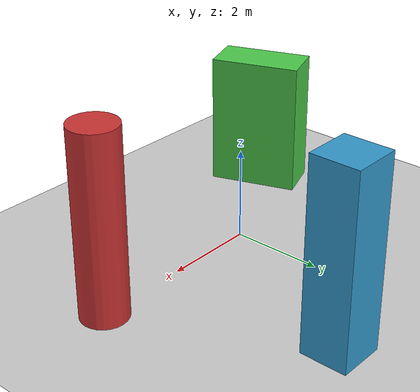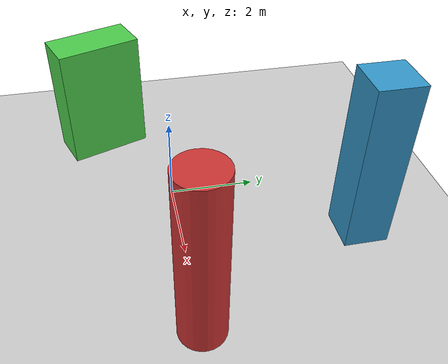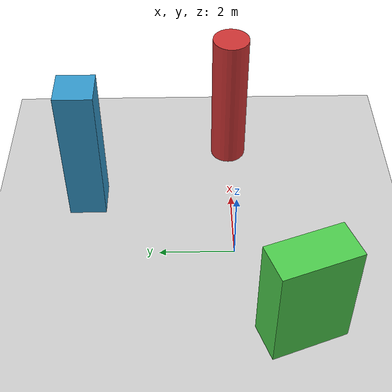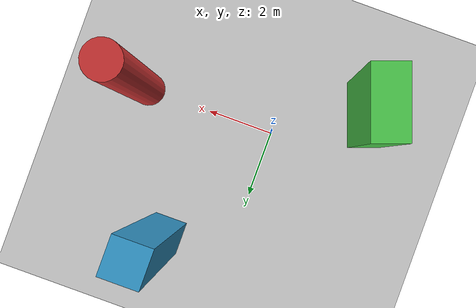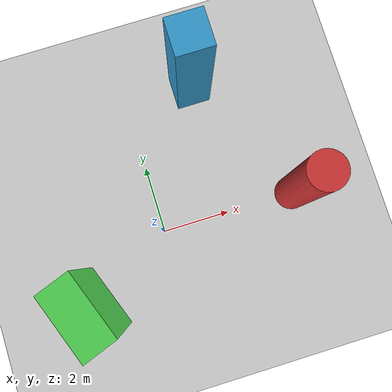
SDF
<?xml version="1.0"?>
<sdf version="1.6">
  <!-- Qualification-only geometry for real Mid360 variation during Hector motion. -->
  <world name="default">
    <include><uri>model://ground_plane</uri></include>
    <include><uri>model://sun</uri></include>

    <model name="front_observation_cylinder">
      <static>true</static>
      <pose>4.0 0.0 2.0 0 0 0</pose>
      <link name="link">
        <collision name="collision">
          <geometry><cylinder><radius>0.50</radius><length>4.0</length></cylinder></geometry>
        </collision>
        <visual name="visual">
          <geometry><cylinder><radius>0.50</radius><length>4.0</length></cylinder></geometry>
          <material><ambient>0.8 0.2 0.2 1</ambient><diffuse>0.8 0.2 0.2 1</diffuse></material>
        </visual>
      </link>
    </model>

    <model name="turn_observation_box">
      <static>true</static>
      <pose>2.0 4.0 2.0 0 0 0</pose>
      <link name="link">
        <collision name="collision">
          <geometry><box><size>1.0 1.0 4.0</size></box></geometry>
        </collision>
        <visual name="visual">
          <geometry><box><size>1.0 1.0 4.0</size></box></geometry>
          <material><ambient>0.2 0.6 0.8 1</ambient><diffuse>0.2 0.6 0.8 1</diffuse></material>
        </visual>
      </link>
    </model>

    <model name="side_observation_box">
      <static>true</static>
      <pose>-2.5 -1.5 1.5 0 0 0.35</pose>
      <link name="link">
        <collision name="collision">
          <geometry><box><size>1.0 2.0 3.0</size></box></geometry>
        </collision>
        <visual name="visual">
          <geometry><box><size>1.0 2.0 3.0</size></box></geometry>
          <material><ambient>0.3 0.8 0.3 1</ambient><diffuse>0.3 0.8 0.3 1</diffuse></material>
        </visual>
      </link>
    </model>

    <gravity>0 0 -9.8</gravity>
    <physics name="default_physics" type="ode">
      <max_step_size>0.001</max_step_size>
      <real_time_factor>1</real_time_factor>
      <real_time_update_rate>1000</real_time_update_rate>
    </physics>
  </world>
</sdf>
